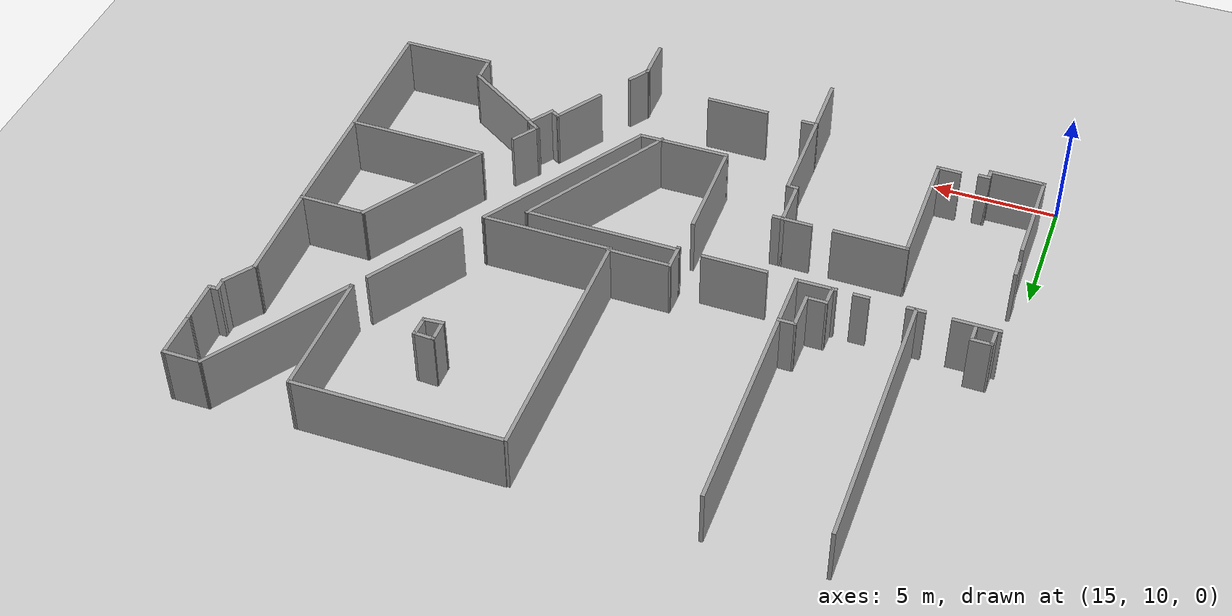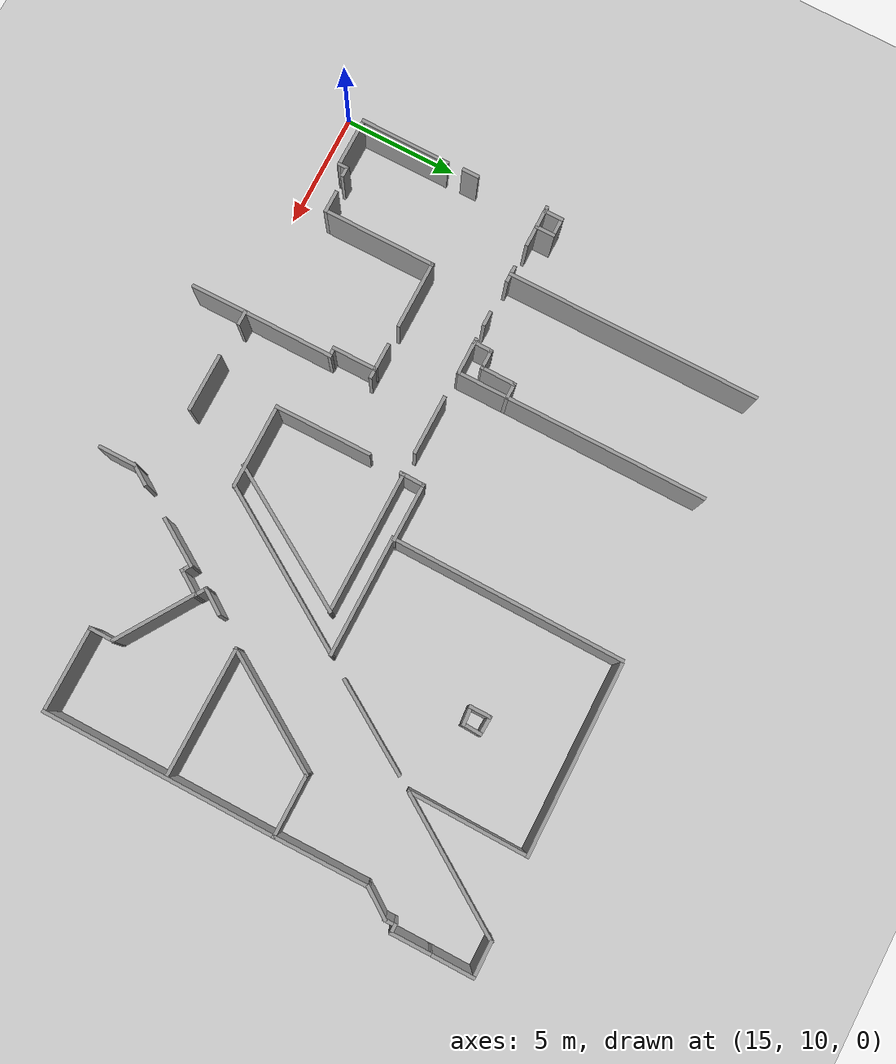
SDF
<sdf version="1.7">
 <world name="default">
  <model name="ground_plane">
   <static>1</static>
   <link name="link">
    <collision name="collision">
     <geometry><plane><normal>0 0 1</normal><size>100 100</size></plane></geometry>
     <surface><friction><ode><mu>100</mu><mu2>50</mu2></ode></friction></surface>
    </collision>
    <visual name="visual">
     <cast_shadows>0</cast_shadows>
     <geometry><plane><normal>0 0 1</normal><size>100 100</size></plane></geometry>
     <material>
      <script><uri>file://media/materials/scripts/gazebo.material</uri><name>Gazebo/Grey</name></script>
     </material>
    </visual>
   </link>
  </model>
  <model name="HopperFloorGround_Full">
   <pose>5.96828 -4.00427 0 0 -0 0</pose>
   <link name="Wall_362">
    <collision name="Wall_362_Collision">
     <geometry><box><size>2.48949 0.15 2.5</size></box></geometry>
     <pose>0 0 1.25 0 -0 0</pose>
    </collision>
    <visual name="Wall_362_Visual">
     <pose>0 0 1.25 0 -0 0</pose>
     <geometry><box><size>2.48949 0.15 2.5</size></box></geometry>
     <material>
      <script><uri>file://media/materials/scripts/gazebo.material</uri><name>Gazebo/Grey</name></script>
      <ambient>1 1 1 1</ambient>
     </material>
     <meta><layer>0</layer></meta>
    </visual>
    <pose>18.9819 13.5448 0 0 -0 1.57949</pose>
   </link>
   <link name="Wall_363">
    <collision name="Wall_363_Collision">
     <geometry><box><size>0.6793 0.15 2.5</size></box></geometry>
     <pose>0 0 1.25 0 -0 0</pose>
    </collision>
    <visual name="Wall_363_Visual">
     <pose>0 0 1.25 0 -0 0</pose>
     <geometry><box><size>0.6793 0.15 2.5</size></box></geometry>
     <material>
      <script><uri>file://media/materials/scripts/gazebo.material</uri><name>Gazebo/Grey</name></script>
      <ambient>1 1 1 1</ambient>
     </material>
     <meta><layer>0</layer></meta>
    </visual>
    <pose>19.2362 14.7145 0 0 -0 0</pose>
   </link>
   <link name="Wall_405">
    <collision name="Wall_405_Collision">
     <geometry><box><size>2.53631 0.15 2.5</size></box></geometry>
     <pose>0 0 1.25 0 -0 0</pose>
    </collision>
    <visual name="Wall_405_Visual">
     <pose>0 0 1.25 0 -0 0</pose>
     <geometry><box><size>2.53631 0.15 2.5</size></box></geometry>
     <material>
      <script><uri>file://media/materials/scripts/gazebo.material</uri><name>Gazebo/Grey</name></script>
      <ambient>1 1 1 1</ambient>
     </material>
     <meta><layer>0</layer></meta>
    </visual>
    <pose>22.2632 14.6791 0 0 -0 0</pose>
   </link>
   <link name="Wall_408">
    <collision name="Wall_408_Collision">
     <geometry><box><size>4 0.15 2.5</size></box></geometry>
     <pose>0 0 1.25 0 -0 0</pose>
    </collision>
    <visual name="Wall_408_Visual">
     <pose>0 0 1.25 0 -0 0</pose>
     <geometry><box><size>4 0.15 2.5</size></box></geometry>
     <material>
      <script><uri>file://media/materials/scripts/gazebo.material</uri><name>Gazebo/Grey</name></script>
      <ambient>1 1 1 1</ambient>
     </material>
     <meta><layer>0</layer></meta>
    </visual>
    <pose>18.9718 16.6395 0 0 -0 1.5708</pose>
   </link>
   <link name="Wall_409">
    <collision name="Wall_409_Collision">
     <geometry><box><size>0.5 0.15 2.5</size></box></geometry>
     <pose>0 0 1.25 0 -0 0</pose>
    </collision>
    <visual name="Wall_409_Visual">
     <pose>0 0 1.25 0 -0 0</pose>
     <geometry><box><size>0.5 0.15 2.5</size></box></geometry>
     <material>
      <script><uri>file://media/materials/scripts/gazebo.material</uri><name>Gazebo/Grey</name></script>
      <ambient>1 1 1 1</ambient>
     </material>
     <meta><layer>0</layer></meta>
    </visual>
    <pose>18.7968 18.5645 0 0 -0 3.14159</pose>
   </link>
   <link name="Wall_410">
    <collision name="Wall_410_Collision">
     <geometry><box><size>2 0.15 2.5</size></box></geometry>
     <pose>0 0 1.25 0 -0 0</pose>
    </collision>
    <visual name="Wall_410_Visual">
     <pose>0 0 1.25 0 -0 0</pose>
     <geometry><box><size>2 0.15 2.5</size></box></geometry>
     <material>
      <script><uri>file://media/materials/scripts/gazebo.material</uri><name>Gazebo/Grey</name></script>
      <ambient>1 1 1 1</ambient>
     </material>
     <meta><layer>0</layer></meta>
    </visual>
    <pose>18.6218 19.4895 0 0 -0 1.5708</pose>
   </link>
   <link name="Wall_411">
    <collision name="Wall_411_Collision">
     <geometry><box><size>0.5 0.15 2.5</size></box></geometry>
     <pose>0 0 1.25 0 -0 0</pose>
    </collision>
    <visual name="Wall_411_Visual">
     <pose>0 0 1.25 0 -0 0</pose>
     <geometry><box><size>0.5 0.15 2.5</size></box></geometry>
     <material>
      <script><uri>file://media/materials/scripts/gazebo.material</uri><name>Gazebo/Grey</name></script>
      <ambient>1 1 1 1</ambient>
     </material>
     <meta><layer>0</layer></meta>
    </visual>
    <pose>18.7968 20.4145 0 0 -0 0</pose>
   </link>
   <link name="Wall_413">
    <collision name="Wall_413_Collision">
     <geometry><box><size>1.25 0.15 2.5</size></box></geometry>
     <pose>0 0 1.25 0 -0 0</pose>
    </collision>
    <visual name="Wall_413_Visual">
     <pose>0 0 1.25 0 -0 0</pose>
     <geometry><box><size>1.25 0.15 2.5</size></box></geometry>
     <material>
      <script><uri>file://media/materials/scripts/gazebo.material</uri><name>Gazebo/Grey</name></script>
      <ambient>1 1 1 1</ambient>
     </material>
     <meta><layer>0</layer></meta>
    </visual>
    <pose>18.0718 20.4145 0 0 -0 3.14159</pose>
   </link>
   <link name="Wall_415">
    <collision name="Wall_415_Collision">
     <geometry><box><size>3 0.15 2.5</size></box></geometry>
     <pose>0 0 1.25 0 -0 0</pose>
    </collision>
    <visual name="Wall_415_Visual">
     <pose>0 0 1.25 0 -0 0</pose>
     <geometry><box><size>3 0.15 2.5</size></box></geometry>
     <material>
      <script><uri>file://media/materials/scripts/gazebo.material</uri><name>Gazebo/Grey</name></script>
      <ambient>1 1 1 1</ambient>
     </material>
     <meta><layer>0</layer></meta>
    </visual>
    <pose>15.1534 20.4107 0 0 -0 3.14159</pose>
   </link>
   <link name="Wall_417">
    <collision name="Wall_417_Collision">
     <geometry><box><size>5 0.15 2.5</size></box></geometry>
     <pose>0 0 1.25 0 -0 0</pose>
    </collision>
    <visual name="Wall_417_Visual">
     <pose>0 0 1.25 0 -0 0</pose>
     <geometry><box><size>5 0.15 2.5</size></box></geometry>
     <material>
      <script><uri>file://media/materials/scripts/gazebo.material</uri><name>Gazebo/Grey</name></script>
      <ambient>1 1 1 1</ambient>
     </material>
     <meta><layer>0</layer></meta>
    </visual>
    <pose>13.7284 17.9857 0 0 -0 -1.5708</pose>
   </link>
   <link name="Wall_418">
    <collision name="Wall_418_Collision">
     <geometry><box><size>1 0.15 2.5</size></box></geometry>
     <pose>0 0 1.25 0 -0 0</pose>
    </collision>
    <visual name="Wall_418_Visual">
     <pose>0 0 1.25 0 -0 0</pose>
     <geometry><box><size>1 0.15 2.5</size></box></geometry>
     <material>
      <script><uri>file://media/materials/scripts/gazebo.material</uri><name>Gazebo/Grey</name></script>
      <ambient>1 1 1 1</ambient>
     </material>
     <meta><layer>0</layer></meta>
    </visual>
    <pose>13.3034 15.5607 0 0 -0 3.14159</pose>
   </link>
   <link name="Wall_420">
    <collision name="Wall_420_Collision">
     <geometry><box><size>0.5 0.15 2.5</size></box></geometry>
     <pose>0 0 1.25 0 -0 0</pose>
    </collision>
    <visual name="Wall_420_Visual">
     <pose>0 0 1.25 0 -0 0</pose>
     <geometry><box><size>0.5 0.15 2.5</size></box></geometry>
     <material>
      <script><uri>file://media/materials/scripts/gazebo.material</uri><name>Gazebo/Grey</name></script>
      <ambient>1 1 1 1</ambient>
     </material>
     <meta><layer>0</layer></meta>
    </visual>
    <pose>11.9118 15.4511 0 0 -0 3.14159</pose>
   </link>
   <link name="Wall_421">
    <collision name="Wall_421_Collision">
     <geometry><box><size>0.5 0.15 2.5</size></box></geometry>
     <pose>0 0 1.25 0 -0 0</pose>
    </collision>
    <visual name="Wall_421_Visual">
     <pose>0 0 1.25 0 -0 0</pose>
     <geometry><box><size>0.5 0.15 2.5</size></box></geometry>
     <material>
      <script><uri>file://media/materials/scripts/gazebo.material</uri><name>Gazebo/Grey</name></script>
      <ambient>1 1 1 1</ambient>
     </material>
     <meta><layer>0</layer></meta>
    </visual>
    <pose>11.7368 15.2761 0 0 -0 -1.5708</pose>
   </link>
   <link name="Wall_422">
    <collision name="Wall_422_Collision">
     <geometry><box><size>2.25 0.15 2.5</size></box></geometry>
     <pose>0 0 1.25 0 -0 0</pose>
    </collision>
    <visual name="Wall_422_Visual">
     <pose>0 0 1.25 0 -0 0</pose>
     <geometry><box><size>2.25 0.15 2.5</size></box></geometry>
     <material>
      <script><uri>file://media/materials/scripts/gazebo.material</uri><name>Gazebo/Grey</name></script>
      <ambient>1 1 1 1</ambient>
     </material>
     <meta><layer>0</layer></meta>
    </visual>
    <pose>10.6868 15.1011 0 0 -0 3.14159</pose>
   </link>
   <link name="Wall_423">
    <collision name="Wall_423_Collision">
     <geometry><box><size>4 0.15 2.5</size></box></geometry>
     <pose>0 0 1.25 0 -0 0</pose>
    </collision>
    <visual name="Wall_423_Visual">
     <pose>0 0 1.25 0 -0 0</pose>
     <geometry><box><size>4 0.15 2.5</size></box></geometry>
     <material>
      <script><uri>file://media/materials/scripts/gazebo.material</uri><name>Gazebo/Grey</name></script>
      <ambient>1 1 1 1</ambient>
     </material>
     <meta><layer>0</layer></meta>
    </visual>
    <pose>9.63677 17.0261 0 0 -0 1.5708</pose>
   </link>
   <link name="Wall_425">
    <collision name="Wall_425_Collision">
     <geometry><box><size>0.75 0.15 2.5</size></box></geometry>
     <pose>0 0 1.25 0 -0 0</pose>
    </collision>
    <visual name="Wall_425_Visual">
     <pose>0 0 1.25 0 -0 0</pose>
     <geometry><box><size>0.75 0.15 2.5</size></box></geometry>
     <material>
      <script><uri>file://media/materials/scripts/gazebo.material</uri><name>Gazebo/Grey</name></script>
      <ambient>1 1 1 1</ambient>
     </material>
     <meta><layer>0</layer></meta>
    </visual>
    <pose>9.58361 20.0089 0 0 -0 1.5708</pose>
   </link>
   <link name="Wall_435">
    <collision name="Wall_435_Collision">
     <geometry><box><size>4.26495 0.15 2.5</size></box></geometry>
     <pose>0 0 1.25 0 -0 0</pose>
    </collision>
    <visual name="Wall_435_Visual">
     <pose>0 0 1.25 0 -0 0</pose>
     <geometry><box><size>4.26495 0.15 2.5</size></box></geometry>
     <material>
      <script><uri>file://media/materials/scripts/gazebo.material</uri><name>Gazebo/Grey</name></script>
      <ambient>1 1 1 1</ambient>
     </material>
     <meta><layer>0</layer></meta>
    </visual>
    <pose>21.7747 19.7572 0 0 -0 -1.56328</pose>
   </link>
   <link name="Wall_436">
    <collision name="Wall_436_Collision">
     <geometry><box><size>3.70808 0.15 2.5</size></box></geometry>
     <pose>0 0 1.25 0 -0 0</pose>
    </collision>
    <visual name="Wall_436_Visual">
     <pose>0 0 1.25 0 -0 0</pose>
     <geometry><box><size>3.70808 0.15 2.5</size></box></geometry>
     <material>
      <script><uri>file://media/materials/scripts/gazebo.material</uri><name>Gazebo/Grey</name></script>
      <ambient>1 1 1 1</ambient>
     </material>
     <meta><layer>0</layer></meta>
    </visual>
    <pose>23.5692 17.7152 0 0 -0 0.008695</pose>
   </link>
   <link name="Wall_437">
    <collision name="Wall_437_Collision">
     <geometry><box><size>7.80761 0.15 2.5</size></box></geometry>
     <pose>0 0 1.25 0 -0 0</pose>
    </collision>
    <visual name="Wall_437_Visual">
     <pose>0 0 1.25 0 -0 0</pose>
     <geometry><box><size>7.80761 0.15 2.5</size></box></geometry>
     <material>
      <script><uri>file://media/materials/scripts/gazebo.material</uri><name>Gazebo/Grey</name></script>
      <ambient>1 1 1 1</ambient>
     </material>
     <meta><layer>0</layer></meta>
    </visual>
    <pose>27.3746 20.9793 0 0 -0 1.01305</pose>
   </link>
   <link name="Wall_439">
    <collision name="Wall_439_Collision">
     <geometry><box><size>4.30512 0.15 2.5</size></box></geometry>
     <pose>0 0 1.25 0 -0 0</pose>
    </collision>
    <visual name="Wall_439_Visual">
     <pose>0 0 1.25 0 -0 0</pose>
     <geometry><box><size>4.30512 0.15 2.5</size></box></geometry>
     <material>
      <script><uri>file://media/materials/scripts/gazebo.material</uri><name>Gazebo/Grey</name></script>
      <ambient>1 1 1 1</ambient>
     </material>
     <meta><layer>0</layer></meta>
    </visual>
    <pose>31.1182 26.9195 0 0 -0 1.01378</pose>
   </link>
   <link name="Wall_441">
    <collision name="Wall_441_Collision">
     <geometry><box><size>0.954999 0.15 2.5</size></box></geometry>
     <pose>0 0 1.25 0 -0 0</pose>
    </collision>
    <visual name="Wall_441_Visual">
     <pose>0 0 1.25 0 -0 0</pose>
     <geometry><box><size>0.954999 0.15 2.5</size></box></geometry>
     <material>
      <script><uri>file://media/materials/scripts/gazebo.material</uri><name>Gazebo/Grey</name></script>
      <ambient>1 1 1 1</ambient>
     </material>
     <meta><layer>0</layer></meta>
    </visual>
    <pose>28.6586 30.3227 0 0 -0 -1.5708</pose>
   </link>
   <link name="Wall_442">
    <collision name="Wall_442_Collision">
     <geometry><box><size>0.864274 0.15 2.5</size></box></geometry>
     <pose>0 0 1.25 0 -0 0</pose>
    </collision>
    <visual name="Wall_442_Visual">
     <pose>0 0 1.25 0 -0 0</pose>
     <geometry><box><size>0.864274 0.15 2.5</size></box></geometry>
     <material>
      <script><uri>file://media/materials/scripts/gazebo.material</uri><name>Gazebo/Grey</name></script>
      <ambient>1 1 1 1</ambient>
     </material>
     <meta><layer>0</layer></meta>
    </visual>
    <pose>29.0144 29.9515 0 0 -0 0.086738</pose>
   </link>
   <link name="Wall_443">
    <collision name="Wall_443_Collision">
     <geometry><box><size>0.893171 0.15 2.5</size></box></geometry>
     <pose>0 0 1.25 0 -0 0</pose>
    </collision>
    <visual name="Wall_443_Visual">
     <pose>0 0 1.25 0 -0 0</pose>
     <geometry><box><size>0.893171 0.15 2.5</size></box></geometry>
     <material>
      <script><uri>file://media/materials/scripts/gazebo.material</uri><name>Gazebo/Grey</name></script>
      <ambient>1 1 1 1</ambient>
     </material>
     <meta><layer>0</layer></meta>
    </visual>
    <pose>29.3856 30.3537 0 0 -0 1.52915</pose>
   </link>
   <link name="Wall_444">
    <collision name="Wall_444_Collision">
     <geometry><box><size>0.862261 0.15 2.5</size></box></geometry>
     <pose>0 0 1.25 0 -0 0</pose>
    </collision>
    <visual name="Wall_444_Visual">
     <pose>0 0 1.25 0 -0 0</pose>
     <geometry><box><size>0.862261 0.15 2.5</size></box></geometry>
     <material>
      <script><uri>file://media/materials/scripts/gazebo.material</uri><name>Gazebo/Grey</name></script>
      <ambient>1 1 1 1</ambient>
     </material>
     <meta><layer>0</layer></meta>
    </visual>
    <pose>29.0453 30.7404 0 0 -0 3.09814</pose>
   </link>
   <link name="Wall_446">
    <collision name="Wall_446_Collision">
     <geometry><box><size>0.25 0.15 2.5</size></box></geometry>
     <pose>0 0 1.25 0 -0 0</pose>
    </collision>
    <visual name="Wall_446_Visual">
     <pose>0 0 1.25 0 -0 0</pose>
     <geometry><box><size>0.25 0.15 2.5</size></box></geometry>
     <material>
      <script><uri>file://media/materials/scripts/gazebo.material</uri><name>Gazebo/Grey</name></script>
      <ambient>1 1 1 1</ambient>
     </material>
     <meta><layer>0</layer></meta>
    </visual>
    <pose>21.8521 23.3497 0 0 -0 1.5708</pose>
   </link>
   <link name="Wall_447">
    <collision name="Wall_447_Collision">
     <geometry><box><size>6.25 0.15 2.5</size></box></geometry>
     <pose>0 0 1.25 0 -0 0</pose>
    </collision>
    <visual name="Wall_447_Visual">
     <pose>0 0 1.25 0 -0 0</pose>
     <geometry><box><size>6.25 0.15 2.5</size></box></geometry>
     <material>
      <script><uri>file://media/materials/scripts/gazebo.material</uri><name>Gazebo/Grey</name></script>
      <ambient>1 1 1 1</ambient>
     </material>
     <meta><layer>0</layer></meta>
    </visual>
    <pose>24.9021 23.3997 0 0 -0 0</pose>
   </link>
   <link name="Wall_449">
    <collision name="Wall_449_Collision">
     <geometry><box><size>6.85029 0.15 2.5</size></box></geometry>
     <pose>0 0 1.25 0 -0 0</pose>
    </collision>
    <visual name="Wall_449_Visual">
     <pose>0 0 1.25 0 -0 0</pose>
     <geometry><box><size>6.85029 0.15 2.5</size></box></geometry>
     <material>
      <script><uri>file://media/materials/scripts/gazebo.material</uri><name>Gazebo/Grey</name></script>
      <ambient>1 1 1 1</ambient>
     </material>
     <meta><layer>0</layer></meta>
    </visual>
    <pose>26.2165 20.5341 0 0 -0 -2.11537</pose>
   </link>
   <link name="Wall_451">
    <collision name="Wall_451_Collision">
     <geometry><box><size>5.22379 0.15 2.5</size></box></geometry>
     <pose>0 0 1.25 0 -0 0</pose>
    </collision>
    <visual name="Wall_451_Visual">
     <pose>0 0 1.25 0 -0 0</pose>
     <geometry><box><size>5.22379 0.15 2.5</size></box></geometry>
     <material>
      <script><uri>file://media/materials/scripts/gazebo.material</uri><name>Gazebo/Grey</name></script>
      <ambient>1 1 1 1</ambient>
     </material>
     <meta><layer>0</layer></meta>
    </visual>
    <pose>32.6029 31.8665 0 0 -0 1.56273</pose>
   </link>
   <link name="Wall_452">
    <collision name="Wall_452_Collision">
     <geometry><box><size>8.29276 0.15 2.5</size></box></geometry>
     <pose>0 0 1.25 0 -0 0</pose>
    </collision>
    <visual name="Wall_452_Visual">
     <pose>0 0 1.25 0 -0 0</pose>
     <geometry><box><size>8.29276 0.15 2.5</size></box></geometry>
     <material>
      <script><uri>file://media/materials/scripts/gazebo.material</uri><name>Gazebo/Grey</name></script>
      <ambient>1 1 1 1</ambient>
     </material>
     <meta><layer>0</layer></meta>
    </visual>
    <pose>28.5522 34.3624 0 0 -0 -3.13154</pose>
   </link>
   <link name="Wall_454">
    <collision name="Wall_454_Collision">
     <geometry><box><size>5.27471 0.15 2.5</size></box></geometry>
     <pose>0 0 1.25 0 -0 0</pose>
    </collision>
    <visual name="Wall_454_Visual">
     <pose>0 0 1.25 0 -0 0</pose>
     <geometry><box><size>5.27471 0.15 2.5</size></box></geometry>
     <material>
      <script><uri>file://media/materials/scripts/gazebo.material</uri><name>Gazebo/Grey</name></script>
      <ambient>1 1 1 1</ambient>
     </material>
     <meta><layer>0</layer></meta>
    </visual>
    <pose>26.8388 24.2215 0 0 -0 -3.13913</pose>
   </link>
   <link name="Wall_455">
    <collision name="Wall_455_Collision">
     <geometry><box><size>10.2158 0.15 2.5</size></box></geometry>
     <pose>0 0 1.25 0 -0 0</pose>
    </collision>
    <visual name="Wall_455_Visual">
     <pose>0 0 1.25 0 -0 0</pose>
     <geometry><box><size>10.2158 0.15 2.5</size></box></geometry>
     <material>
      <script><uri>file://media/materials/scripts/gazebo.material</uri><name>Gazebo/Grey</name></script>
      <ambient>1 1 1 1</ambient>
     </material>
     <meta><layer>0</layer></meta>
    </visual>
    <pose>24.3173 29.2479 0 0 -0 1.56267</pose>
   </link>
   <link name="Wall_478">
    <collision name="Wall_478_Collision">
     <geometry><box><size>1.88054 0.15 2.5</size></box></geometry>
     <pose>0 0 1.25 0 -0 0</pose>
    </collision>
    <visual name="Wall_478_Visual">
     <pose>0 0 1.25 0 -0 0</pose>
     <geometry><box><size>1.88054 0.15 2.5</size></box></geometry>
     <material>
      <script><uri>file://media/materials/scripts/gazebo.material</uri><name>Gazebo/Grey</name></script>
      <ambient>1 1 1 1</ambient>
     </material>
     <meta><layer>0</layer></meta>
    </visual>
    <pose>10.3253 23.4097 0 0 -0 0.004444</pose>
   </link>
   <link name="Wall_480">
    <collision name="Wall_480_Collision">
     <geometry><box><size>0.75 0.15 2.5</size></box></geometry>
     <pose>0 0 1.25 0 -0 0</pose>
    </collision>
    <visual name="Wall_480_Visual">
     <pose>0 0 1.25 0 -0 0</pose>
     <geometry><box><size>0.75 0.15 2.5</size></box></geometry>
     <material>
      <script><uri>file://media/materials/scripts/gazebo.material</uri><name>Gazebo/Grey</name></script>
      <ambient>1 1 1 1</ambient>
     </material>
     <meta><layer>0</layer></meta>
    </visual>
    <pose>12.6058 23.3981 0 0 -0 0</pose>
   </link>
   <link name="Wall_482">
    <collision name="Wall_482_Collision">
     <geometry><box><size>0.649914 0.15 2.5</size></box></geometry>
     <pose>0 0 1.25 0 -0 0</pose>
    </collision>
    <visual name="Wall_482_Visual">
     <pose>0 0 1.25 0 -0 0</pose>
     <geometry><box><size>0.649914 0.15 2.5</size></box></geometry>
     <material>
      <script><uri>file://media/materials/scripts/gazebo.material</uri><name>Gazebo/Grey</name></script>
      <ambient>1 1 1 1</ambient>
     </material>
     <meta><layer>0</layer></meta>
    </visual>
    <pose>14.6861 23.4058 0 0 -0 0</pose>
   </link>
   <link name="Wall_484">
    <collision name="Wall_484_Collision">
     <geometry><box><size>1.65745 0.15 2.5</size></box></geometry>
     <pose>0 0 1.25 0 -0 0</pose>
    </collision>
    <visual name="Wall_484_Visual">
     <pose>0 0 1.25 0 -0 0</pose>
     <geometry><box><size>1.65745 0.15 2.5</size></box></geometry>
     <material>
      <script><uri>file://media/materials/scripts/gazebo.material</uri><name>Gazebo/Grey</name></script>
      <ambient>1 1 1 1</ambient>
     </material>
     <meta><layer>0</layer></meta>
    </visual>
    <pose>16.4358 23.4135 0 0 -0 0.010204</pose>
   </link>
   <link name="Wall_486">
    <collision name="Wall_486_Collision">
     <geometry><box><size>2.61881 0.15 2.5</size></box></geometry>
     <pose>0 0 1.25 0 -0 0</pose>
    </collision>
    <visual name="Wall_486_Visual">
     <pose>0 0 1.25 0 -0 0</pose>
     <geometry><box><size>2.61881 0.15 2.5</size></box></geometry>
     <material>
      <script><uri>file://media/materials/scripts/gazebo.material</uri><name>Gazebo/Grey</name></script>
      <ambient>1 1 1 1</ambient>
     </material>
     <meta><layer>0</layer></meta>
    </visual>
    <pose>19.6084 23.3904 0 0 -0 0</pose>
   </link>
   <link name="Wall_488">
    <collision name="Wall_488_Collision">
     <geometry><box><size>11 0.15 2.5</size></box></geometry>
     <pose>0 0 1.25 0 -0 0</pose>
    </collision>
    <visual name="Wall_488_Visual">
     <pose>0 0 1.25 0 -0 0</pose>
     <geometry><box><size>11 0.15 2.5</size></box></geometry>
     <material>
      <script><uri>file://media/materials/scripts/gazebo.material</uri><name>Gazebo/Grey</name></script>
      <ambient>1 1 1 1</ambient>
     </material>
     <meta><layer>0</layer></meta>
    </visual>
    <pose>17.1895 28.8462 0 0 -0 1.5708</pose>
   </link>
   <link name="Wall_490">
    <collision name="Wall_490_Collision">
     <geometry><box><size>1.03974 0.15 2.5</size></box></geometry>
     <pose>0 0 1.25 0 -0 0</pose>
    </collision>
    <visual name="Wall_490_Visual">
     <pose>0 0 1.25 0 -0 0</pose>
     <geometry><box><size>1.03974 0.15 2.5</size></box></geometry>
     <material>
      <script><uri>file://media/materials/scripts/gazebo.material</uri><name>Gazebo/Grey</name></script>
      <ambient>1 1 1 1</ambient>
     </material>
     <meta><layer>0</layer></meta>
    </visual>
    <pose>21.8627 23.8444 0 0 -0 1.54704</pose>
   </link>
   <link name="Wall_492">
    <collision name="Wall_492_Collision">
     <geometry><box><size>2.58518 0.15 2.5</size></box></geometry>
     <pose>0 0 1.25 0 -0 0</pose>
    </collision>
    <visual name="Wall_492_Visual">
     <pose>0 0 1.25 0 -0 0</pose>
     <geometry><box><size>2.58518 0.15 2.5</size></box></geometry>
     <material>
      <script><uri>file://media/materials/scripts/gazebo.material</uri><name>Gazebo/Grey</name></script>
      <ambient>1 1 1 1</ambient>
     </material>
     <meta><layer>0</layer></meta>
    </visual>
    <pose>23.0907 24.2891 0 0 -0 0</pose>
   </link>
   <link name="Wall_495">
    <collision name="Wall_495_Collision">
     <geometry><box><size>0.89738 0.15 2.5</size></box></geometry>
     <pose>0 0 1.25 0 -0 0</pose>
    </collision>
    <visual name="Wall_495_Visual">
     <pose>0 0 1.25 0 -0 0</pose>
     <geometry><box><size>0.89738 0.15 2.5</size></box></geometry>
     <material>
      <script><uri>file://media/materials/scripts/gazebo.material</uri><name>Gazebo/Grey</name></script>
      <ambient>1 1 1 1</ambient>
     </material>
     <meta><layer>0</layer></meta>
    </visual>
    <pose>15.8051 23.7865 0 0 -0 1.54699</pose>
   </link>
   <link name="Wall_496">
    <collision name="Wall_496_Collision">
     <geometry><box><size>0.906063 0.15 2.5</size></box></geometry>
     <pose>0 0 1.25 0 -0 0</pose>
    </collision>
    <visual name="Wall_496_Visual">
     <pose>0 0 1.25 0 -0 0</pose>
     <geometry><box><size>0.906063 0.15 2.5</size></box></geometry>
     <material>
      <script><uri>file://media/materials/scripts/gazebo.material</uri><name>Gazebo/Grey</name></script>
      <ambient>1 1 1 1</ambient>
     </material>
     <meta><layer>0</layer></meta>
    </visual>
    <pose>16.192 24.16 0 0 -0 0</pose>
   </link>
   <link name="Wall_497">
    <collision name="Wall_497_Collision">
     <geometry><box><size>1.5821 0.15 2.5</size></box></geometry>
     <pose>0 0 1.25 0 -0 0</pose>
    </collision>
    <visual name="Wall_497_Visual">
     <pose>0 0 1.25 0 -0 0</pose>
     <geometry><box><size>1.5821 0.15 2.5</size></box></geometry>
     <material>
      <script><uri>file://media/materials/scripts/gazebo.material</uri><name>Gazebo/Grey</name></script>
      <ambient>1 1 1 1</ambient>
     </material>
     <meta><layer>0</layer></meta>
    </visual>
    <pose>16.5789 24.8761 0 0 -0 1.55838</pose>
   </link>
   <link name="Wall_498">
    <collision name="Wall_498_Collision">
     <geometry><box><size>0.75485 0.15 2.5</size></box></geometry>
     <pose>0 0 1.25 0 -0 0</pose>
    </collision>
    <visual name="Wall_498_Visual">
     <pose>0 0 1.25 0 -0 0</pose>
     <geometry><box><size>0.75485 0.15 2.5</size></box></geometry>
     <material>
      <script><uri>file://media/materials/scripts/gazebo.material</uri><name>Gazebo/Grey</name></script>
      <ambient>1 1 1 1</ambient>
     </material>
     <meta><layer>0</layer></meta>
    </visual>
    <pose>16.8903 25.5921 0 0 -0 0</pose>
   </link>
   <link name="Wall_500">
    <collision name="Wall_500_Collision">
     <geometry><box><size>0.869365 0.15 2.5</size></box></geometry>
     <pose>0 0 1.25 0 -0 0</pose>
    </collision>
    <visual name="Wall_500_Visual">
     <pose>0 0 1.25 0 -0 0</pose>
     <geometry><box><size>0.869365 0.15 2.5</size></box></geometry>
     <material>
      <script><uri>file://media/materials/scripts/gazebo.material</uri><name>Gazebo/Grey</name></script>
      <ambient>1 1 1 1</ambient>
     </material>
     <meta><layer>0</layer></meta>
    </visual>
    <pose>9.6065 23.8037 0 0 -0 1.56004</pose>
   </link>
   <link name="Wall_501">
    <collision name="Wall_501_Collision">
     <geometry><box><size>0.892527 0.15 2.5</size></box></geometry>
     <pose>0 0 1.25 0 -0 0</pose>
    </collision>
    <visual name="Wall_501_Visual">
     <pose>0 0 1.25 0 -0 0</pose>
     <geometry><box><size>0.892527 0.15 2.5</size></box></geometry>
     <material>
      <script><uri>file://media/materials/scripts/gazebo.material</uri><name>Gazebo/Grey</name></script>
      <ambient>1 1 1 1</ambient>
     </material>
     <meta><layer>0</layer></meta>
    </visual>
    <pose>9.98163 24.1634 0 0 -0 0</pose>
   </link>
   <link name="Wall_502">
    <collision name="Wall_502_Collision">
     <geometry><box><size>0.877058 0.15 2.5</size></box></geometry>
     <pose>0 0 1.25 0 -0 0</pose>
    </collision>
    <visual name="Wall_502_Visual">
     <pose>0 0 1.25 0 -0 0</pose>
     <geometry><box><size>0.877058 0.15 2.5</size></box></geometry>
     <material>
      <script><uri>file://media/materials/scripts/gazebo.material</uri><name>Gazebo/Grey</name></script>
      <ambient>1 1 1 1</ambient>
     </material>
     <meta><layer>0</layer></meta>
    </visual>
    <pose>10.3529 23.7998 0 0 -0 -1.5708</pose>
   </link>
   <link name="Wall_506">
    <collision name="Wall_506_Collision">
     <geometry><box><size>11.0611 0.15 2.5</size></box></geometry>
     <pose>0 0 1.25 0 -0 0</pose>
    </collision>
    <visual name="Wall_506_Visual">
     <pose>0 0 1.25 0 -0 0</pose>
     <geometry><box><size>11.0611 0.15 2.5</size></box></geometry>
     <material>
      <script><uri>file://media/materials/scripts/gazebo.material</uri><name>Gazebo/Grey</name></script>
      <ambient>1 1 1 1</ambient>
     </material>
     <meta><layer>0</layer></meta>
    </visual>
    <pose>12.5985 28.8584 0 0 -0 1.57329</pose>
   </link>
   <link name="Wall_546">
    <collision name="Wall_546_Collision">
     <geometry><box><size>1.6886 0.15 2.5</size></box></geometry>
     <pose>0 0 1.25 0 -0 0</pose>
    </collision>
    <visual name="Wall_546_Visual">
     <pose>0 0 1.25 0 -0 0</pose>
     <geometry><box><size>1.6886 0.15 2.5</size></box></geometry>
     <material>
      <script><uri>file://media/materials/scripts/gazebo.material</uri><name>Gazebo/Grey</name></script>
      <ambient>1 1 1 1</ambient>
     </material>
     <meta><layer>0</layer></meta>
    </visual>
    <pose>26.4604 13.0837 0 0 -0 1.5708</pose>
   </link>
   <link name="Wall_547">
    <collision name="Wall_547_Collision">
     <geometry><box><size>1.02829 0.15 2.5</size></box></geometry>
     <pose>0 0 1.25 0 -0 0</pose>
    </collision>
    <visual name="Wall_547_Visual">
     <pose>0 0 1.25 0 -0 0</pose>
     <geometry><box><size>1.02829 0.15 2.5</size></box></geometry>
     <material>
      <script><uri>file://media/materials/scripts/gazebo.material</uri><name>Gazebo/Grey</name></script>
      <ambient>1 1 1 1</ambient>
     </material>
     <meta><layer>0</layer></meta>
    </visual>
    <pose>26.702 14.2198 0 0 -0 0.988443</pose>
   </link>
   <link name="Wall_549">
    <collision name="Wall_549_Collision">
     <geometry><box><size>2.2494 0.15 2.5</size></box></geometry>
     <pose>0 0 1.25 0 -0 0</pose>
    </collision>
    <visual name="Wall_549_Visual">
     <pose>0 0 1.25 0 -0 0</pose>
     <geometry><box><size>2.2494 0.15 2.5</size></box></geometry>
     <material>
      <script><uri>file://media/materials/scripts/gazebo.material</uri><name>Gazebo/Grey</name></script>
      <ambient>1 1 1 1</ambient>
     </material>
     <meta><layer>0</layer></meta>
    </visual>
    <pose>28.3479 16.8676 0 0 -0 1.00407</pose>
   </link>
   <link name="Wall_550">
    <collision name="Wall_550_Collision">
     <geometry><box><size>0.527405 0.15 2.5</size></box></geometry>
     <pose>0 0 1.25 0 -0 0</pose>
    </collision>
    <visual name="Wall_550_Visual">
     <pose>0 0 1.25 0 -0 0</pose>
     <geometry><box><size>0.527405 0.15 2.5</size></box></geometry>
     <material>
      <script><uri>file://media/materials/scripts/gazebo.material</uri><name>Gazebo/Grey</name></script>
      <ambient>1 1 1 1</ambient>
     </material>
     <meta><layer>0</layer></meta>
    </visual>
    <pose>29.0725 17.6548 0 0 -0 -0.548549</pose>
   </link>
   <link name="Wall_551">
    <collision name="Wall_551_Collision">
     <geometry><box><size>1.2466 0.15 2.5</size></box></geometry>
     <pose>0 0 1.25 0 -0 0</pose>
    </collision>
    <visual name="Wall_551_Visual">
     <pose>0 0 1.25 0 -0 0</pose>
     <geometry><box><size>1.2466 0.15 2.5</size></box></geometry>
     <material>
      <script><uri>file://media/materials/scripts/gazebo.material</uri><name>Gazebo/Grey</name></script>
      <ambient>1 1 1 1</ambient>
     </material>
     <meta><layer>0</layer></meta>
    </visual>
    <pose>29.5376 18.0126 0 0 -0 0.982794</pose>
   </link>
   <link name="Wall_552">
    <collision name="Wall_552_Collision">
     <geometry><box><size>0.631723 0.15 2.5</size></box></geometry>
     <pose>0 0 1.25 0 -0 0</pose>
    </collision>
    <visual name="Wall_552_Visual">
     <pose>0 0 1.25 0 -0 0</pose>
     <geometry><box><size>0.631723 0.15 2.5</size></box></geometry>
     <material>
      <script><uri>file://media/materials/scripts/gazebo.material</uri><name>Gazebo/Grey</name></script>
      <ambient>1 1 1 1</ambient>
     </material>
     <meta><layer>0</layer></meta>
    </visual>
    <pose>29.636 18.5941 0 0 -0 2.5948</pose>
   </link>
   <link name="Wall_553">
    <collision name="Wall_553_Collision">
     <geometry><box><size>1.25663 0.15 2.5</size></box></geometry>
     <pose>0 0 1.25 0 -0 0</pose>
    </collision>
    <visual name="Wall_553_Visual">
     <pose>0 0 1.25 0 -0 0</pose>
     <geometry><box><size>1.25663 0.15 2.5</size></box></geometry>
     <material>
      <script><uri>file://media/materials/scripts/gazebo.material</uri><name>Gazebo/Grey</name></script>
      <ambient>1 1 1 1</ambient>
     </material>
     <meta><layer>0</layer></meta>
    </visual>
    <pose>29.7434 19.1755 0 0 -0 0.969342</pose>
   </link>
   <link name="Wall_555">
    <collision name="Wall_555_Collision">
     <geometry><box><size>5.67678 0.15 2.5</size></box></geometry>
     <pose>0 0 1.25 0 -0 0</pose>
    </collision>
    <visual name="Wall_555_Visual">
     <pose>0 0 1.25 0 -0 0</pose>
     <geometry><box><size>5.67678 0.15 2.5</size></box></geometry>
     <material>
      <script><uri>file://media/materials/scripts/gazebo.material</uri><name>Gazebo/Grey</name></script>
      <ambient>1 1 1 1</ambient>
     </material>
     <meta><layer>0</layer></meta>
    </visual>
    <pose>32.4031 23.2278 0 0 -0 1.01243</pose>
   </link>
   <link name="Wall_557">
    <collision name="Wall_557_Collision">
     <geometry><box><size>2.75 0.15 2.5</size></box></geometry>
     <pose>0 0 1.25 0 -0 0</pose>
    </collision>
    <visual name="Wall_557_Visual">
     <pose>0 0 1.25 0 -0 0</pose>
     <geometry><box><size>2.75 0.15 2.5</size></box></geometry>
     <material>
      <script><uri>file://media/materials/scripts/gazebo.material</uri><name>Gazebo/Grey</name></script>
      <ambient>1 1 1 1</ambient>
     </material>
     <meta><layer>0</layer></meta>
    </visual>
    <pose>35.1672 25.5715 0 0 -0 0</pose>
   </link>
   <link name="Wall_558">
    <collision name="Wall_558_Collision">
     <geometry><box><size>4.17563 0.15 2.5</size></box></geometry>
     <pose>0 0 1.25 0 -0 0</pose>
    </collision>
    <visual name="Wall_558_Visual">
     <pose>0 0 1.25 0 -0 0</pose>
     <geometry><box><size>4.17563 0.15 2.5</size></box></geometry>
     <material>
      <script><uri>file://media/materials/scripts/gazebo.material</uri><name>Gazebo/Grey</name></script>
      <ambient>1 1 1 1</ambient>
     </material>
     <meta><layer>0</layer></meta>
    </visual>
    <pose>36.4464 27.5842 0 0 -0 1.58114</pose>
   </link>
   <link name="Wall_559">
    <collision name="Wall_559_Collision">
     <geometry><box><size>1.49989 0.15 2.5</size></box></geometry>
     <pose>0 0 1.25 0 -0 0</pose>
    </collision>
    <visual name="Wall_559_Visual">
     <pose>0 0 1.25 0 -0 0</pose>
     <geometry><box><size>1.49989 0.15 2.5</size></box></geometry>
     <material>
      <script><uri>file://media/materials/scripts/gazebo.material</uri><name>Gazebo/Grey</name></script>
      <ambient>1 1 1 1</ambient>
     </material>
     <meta><layer>0</layer></meta>
    </visual>
    <pose>36.8102 30.1515 0 0 -0 0.964413</pose>
   </link>
   <link name="Wall_560">
    <collision name="Wall_560_Collision">
     <geometry><box><size>0.597268 0.15 2.5</size></box></geometry>
     <pose>0 0 1.25 0 -0 0</pose>
    </collision>
    <visual name="Wall_560_Visual">
     <pose>0 0 1.25 0 -0 0</pose>
     <geometry><box><size>0.597268 0.15 2.5</size></box></geometry>
     <material>
      <script><uri>file://media/materials/scripts/gazebo.material</uri><name>Gazebo/Grey</name></script>
      <ambient>1 1 1 1</ambient>
     </material>
     <meta><layer>0</layer></meta>
    </visual>
    <pose>37.1949 30.9297 0 0 -0 1.5708</pose>
   </link>
   <link name="Wall_561">
    <collision name="Wall_561_Collision">
     <geometry><box><size>0.472033 0.15 2.5</size></box></geometry>
     <pose>0 0 1.25 0 -0 0</pose>
    </collision>
    <visual name="Wall_561_Visual">
     <pose>0 0 1.25 0 -0 0</pose>
     <geometry><box><size>0.472033 0.15 2.5</size></box></geometry>
     <material>
      <script><uri>file://media/materials/scripts/gazebo.material</uri><name>Gazebo/Grey</name></script>
      <ambient>1 1 1 1</ambient>
     </material>
     <meta><layer>0</layer></meta>
    </visual>
    <pose>37.3559 31.1534 0 0 -0 0</pose>
   </link>
   <link name="Wall_564">
    <collision name="Wall_564_Collision">
     <geometry><box><size>1.77545 0.15 2.5</size></box></geometry>
     <pose>0 0 1.25 0 -0 0</pose>
    </collision>
    <visual name="Wall_564_Visual">
     <pose>0 0 1.25 0 -0 0</pose>
     <geometry><box><size>1.77545 0.15 2.5</size></box></geometry>
     <material>
      <script><uri>file://media/materials/scripts/gazebo.material</uri><name>Gazebo/Grey</name></script>
      <ambient>1 1 1 1</ambient>
     </material>
     <meta><layer>0</layer></meta>
    </visual>
    <pose>37.5124 31.966 0 0 -0 1.57635</pose>
   </link>
   <link name="Wall_565">
    <collision name="Wall_565_Collision">
     <geometry><box><size>2 0.15 2.5</size></box></geometry>
     <pose>0 0 1.25 0 -0 0</pose>
    </collision>
    <visual name="Wall_565_Visual">
     <pose>0 0 1.25 0 -0 0</pose>
     <geometry><box><size>2 0.15 2.5</size></box></geometry>
     <material>
      <script><uri>file://media/materials/scripts/gazebo.material</uri><name>Gazebo/Grey</name></script>
      <ambient>1 1 1 1</ambient>
     </material>
     <meta><layer>0</layer></meta>
    </visual>
    <pose>37.5079 33.7037 0 0 -0 1.5708</pose>
   </link>
   <link name="Wall_566">
    <collision name="Wall_566_Collision">
     <geometry><box><size>1.61106 0.15 2.5</size></box></geometry>
     <pose>0 0 1.25 0 -0 0</pose>
    </collision>
    <visual name="Wall_566_Visual">
     <pose>0 0 1.25 0 -0 0</pose>
     <geometry><box><size>1.61106 0.15 2.5</size></box></geometry>
     <material>
      <script><uri>file://media/materials/scripts/gazebo.material</uri><name>Gazebo/Grey</name></script>
      <ambient>1 1 1 1</ambient>
     </material>
     <meta><layer>0</layer></meta>
    </visual>
    <pose>36.7774 34.6236 0 0 -0 -3.13461</pose>
   </link>
   <link name="Wall_567">
    <collision name="Wall_567_Collision">
     <geometry><box><size>6.42011 0.15 2.5</size></box></geometry>
     <pose>0 0 1.25 0 -0 0</pose>
    </collision>
    <visual name="Wall_567_Visual">
     <pose>0 0 1.25 0 -0 0</pose>
     <geometry><box><size>6.42011 0.15 2.5</size></box></geometry>
     <material>
      <script><uri>file://media/materials/scripts/gazebo.material</uri><name>Gazebo/Grey</name></script>
      <ambient>1 1 1 1</ambient>
     </material>
     <meta><layer>0</layer></meta>
    </visual>
    <pose>34.3423 31.9873 0 0 -0 -2.14563</pose>
   </link>
   <link name="Wall_571">
    <collision name="Wall_571_Collision">
     <geometry><box><size>1.15131 0.15 2.5</size></box></geometry>
     <pose>0 0 1.25 0 -0 0</pose>
    </collision>
    <visual name="Wall_571_Visual">
     <pose>0 0 1.25 0 -0 0</pose>
     <geometry><box><size>1.15131 0.15 2.5</size></box></geometry>
     <material>
      <script><uri>file://media/materials/scripts/gazebo.material</uri><name>Gazebo/Grey</name></script>
      <ambient>1 1 1 1</ambient>
     </material>
     <meta><layer>0</layer></meta>
    </visual>
    <pose>32.8625 16.0126 0 0 -0 1.5708</pose>
   </link>
   <link name="Wall_572">
    <collision name="Wall_572_Collision">
     <geometry><box><size>3.70907 0.15 2.5</size></box></geometry>
     <pose>0 0 1.25 0 -0 0</pose>
    </collision>
    <visual name="Wall_572_Visual">
     <pose>0 0 1.25 0 -0 0</pose>
     <geometry><box><size>3.70907 0.15 2.5</size></box></geometry>
     <material>
      <script><uri>file://media/materials/scripts/gazebo.material</uri><name>Gazebo/Grey</name></script>
      <ambient>1 1 1 1</ambient>
     </material>
     <meta><layer>0</layer></meta>
    </visual>
    <pose>31.3605 17.4676 0 0 -0 2.57554</pose>
   </link>
   <link name="Wall_574">
    <collision name="Wall_574_Collision">
     <geometry><box><size>3.75 0.15 2.5</size></box></geometry>
     <pose>0 0 1.25 0 -0 0</pose>
    </collision>
    <visual name="Wall_574_Visual">
     <pose>0 0 1.25 0 -0 0</pose>
     <geometry><box><size>3.75 0.15 2.5</size></box></geometry>
     <material>
      <script><uri>file://media/materials/scripts/gazebo.material</uri><name>Gazebo/Grey</name></script>
      <ambient>1 1 1 1</ambient>
     </material>
     <meta><layer>0</layer></meta>
    </visual>
    <pose>34.6625 15.5119 0 0 -0 0</pose>
   </link>
   <link name="Wall_605">
    <collision name="Wall_605_Collision">
     <geometry><box><size>10.2095 0.15 2.5</size></box></geometry>
     <pose>0 0 1.25 0 -0 0</pose>
    </collision>
    <visual name="Wall_605_Visual">
     <pose>0 0 1.25 0 -0 0</pose>
     <geometry><box><size>10.2095 0.15 2.5</size></box></geometry>
     <material>
      <script><uri>file://media/materials/scripts/gazebo.material</uri><name>Gazebo/Grey</name></script>
      <ambient>1 1 1 1</ambient>
     </material>
     <meta><layer>0</layer></meta>
    </visual>
    <pose>36.4648 20.5417 0 0 -0 1.57032</pose>
   </link>
   <link name="Wall_607">
    <collision name="Wall_607_Collision">
     <geometry><box><size>5.6228 0.15 2.5</size></box></geometry>
     <pose>0 0 1.25 0 -0 0</pose>
    </collision>
    <visual name="Wall_607_Visual">
     <pose>0 0 1.25 0 -0 0</pose>
     <geometry><box><size>5.6228 0.15 2.5</size></box></geometry>
     <material>
      <script><uri>file://media/materials/scripts/gazebo.material</uri><name>Gazebo/Grey</name></script>
      <ambient>1 1 1 1</ambient>
     </material>
     <meta><layer>0</layer></meta>
    </visual>
    <pose>33.6873 20.8809 0 0 -0 -0.001149</pose>
   </link>
   <static>1</static>
  </model>
 </world>
</sdf>
